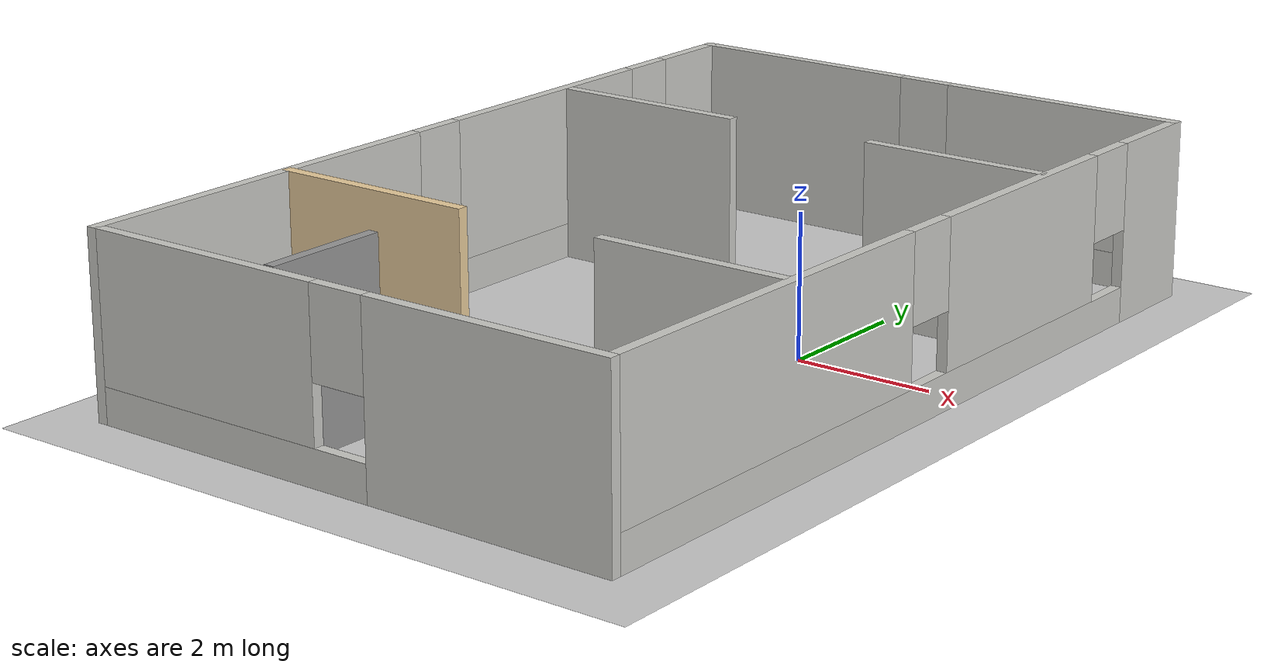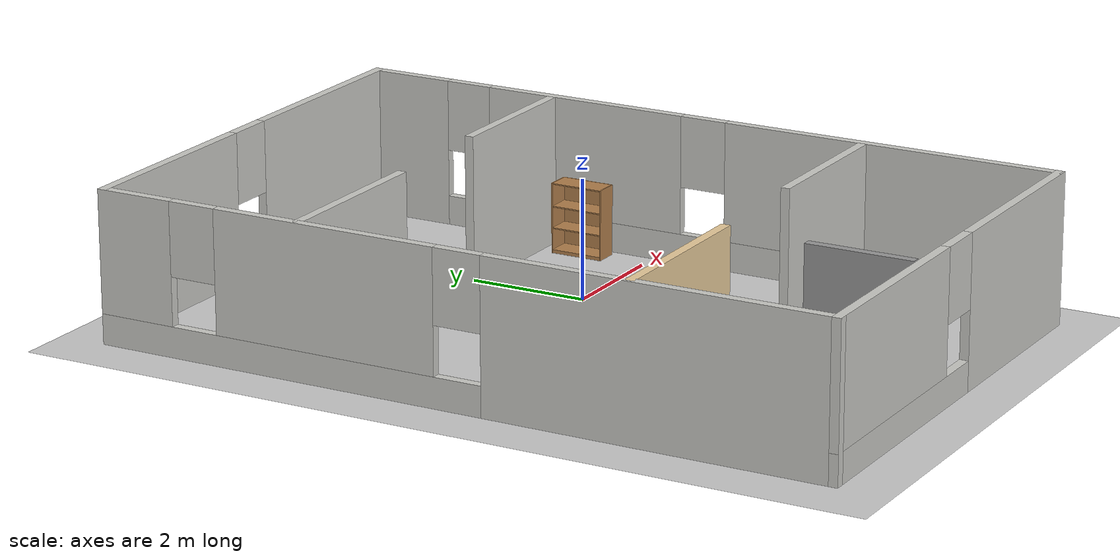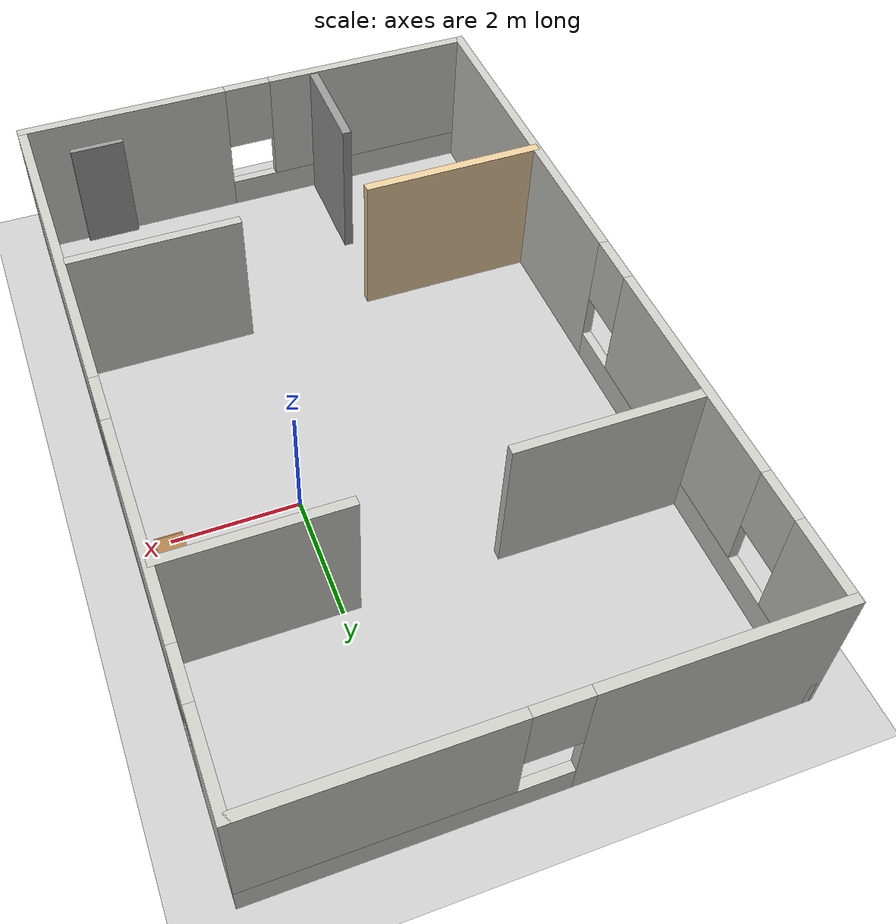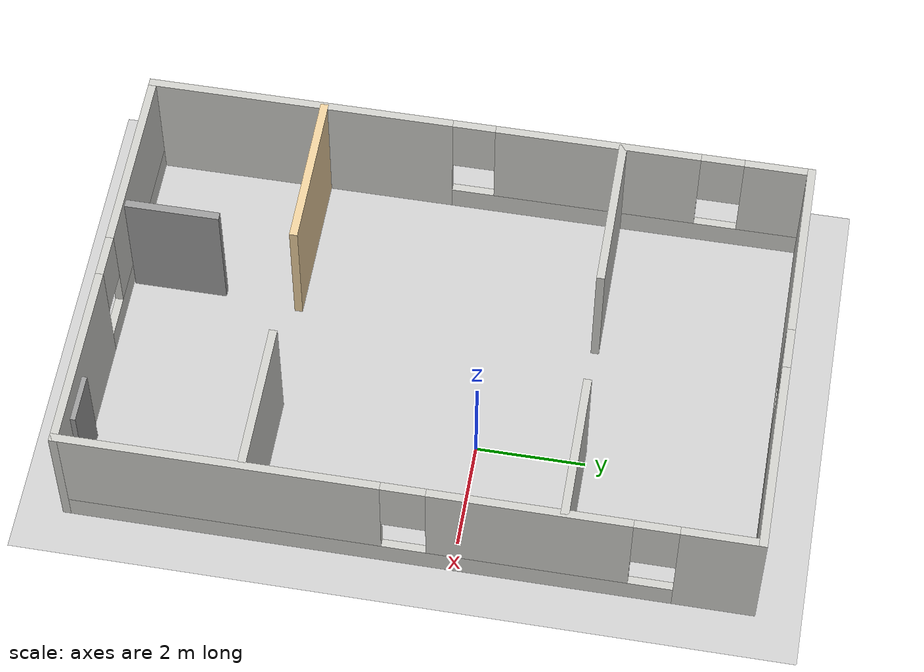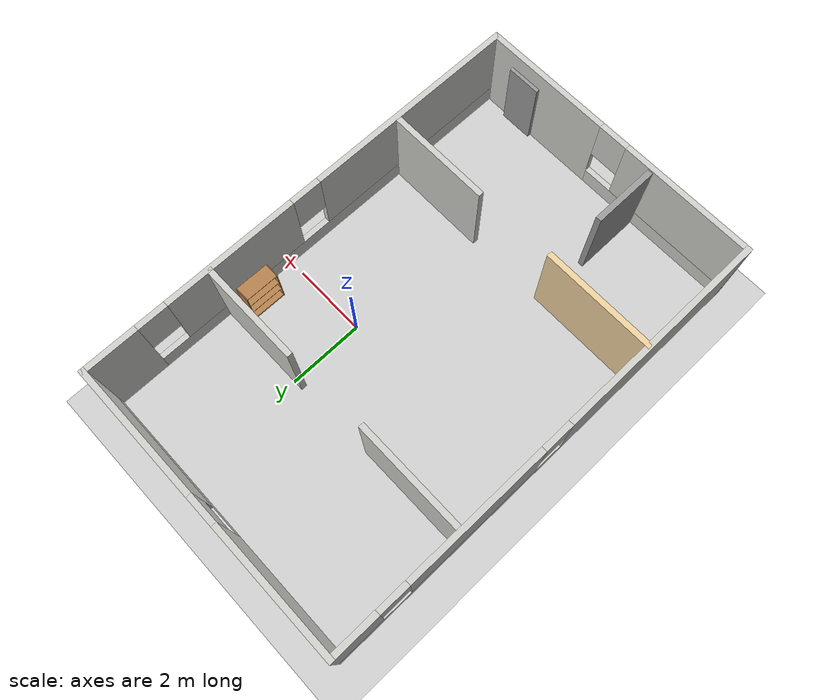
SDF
<sdf version="1.7">
 <world name="default">
  <light name="sun" type="directional">
   <pose>0 0 10 0 -0 0</pose>
   <diffuse>0.8 0.8 0.8 1</diffuse>
   <specular>0.2 0.2 0.2 1</specular>
   <attenuation>
    <range>1000</range>
    <constant>0.9</constant>
    <linear>0.01</linear>
    <quadratic>0.001</quadratic>
   </attenuation>
   <direction>-0.5 0.1 -0.9</direction>
   <spot><inner_angle>0</inner_angle><outer_angle>0</outer_angle><falloff>0</falloff></spot>
  </light>
  <model name="ground_plane">
   <static>1</static>
   <link name="link">
    <collision name="collision">
     <geometry><plane><normal>0 0 1</normal><size>100 100</size></plane></geometry>
     <surface><friction><ode><mu>100</mu><mu2>50</mu2></ode></friction></surface>
    </collision>
    <visual name="visual">
     <cast_shadows>0</cast_shadows>
     <geometry><plane><normal>0 0 1</normal><size>100 100</size></plane></geometry>
     <material>
      <script><uri>file://media/materials/scripts/gazebo.material</uri><name>Gazebo/Grey</name></script>
     </material>
    </visual>
   </link>
  </model>
  <gravity>0 0 -9.8</gravity>
  <magnetic_field>6e-06 2.3e-05 -4.2e-05</magnetic_field>
  <atmosphere type="adiabatic"/>
  <physics type="ode">
   <max_step_size>0.001</max_step_size>
   <real_time_factor>1</real_time_factor>
   <real_time_update_rate>1000</real_time_update_rate>
  </physics>
  <scene><ambient>0.4 0.4 0.4 1</ambient><background>0.7 0.7 0.7 1</background><shadows>1</shadows></scene>
  <audio><device>default</device></audio>
  <spherical_coordinates>
   <surface_model>EARTH_WGS84</surface_model>
   <latitude_deg>0</latitude_deg>
   <longitude_deg>0</longitude_deg>
   <elevation>0</elevation>
   <heading_deg>0</heading_deg>
  </spherical_coordinates>
  <model name="officelayout">
   <pose>-1.4535 -0.855734 0 0 -0 0</pose>
   <link name="Door_0">
    <collision name="Door_0_Collision">
     <geometry><box><size>0.9 0.17 2</size></box></geometry>
     <pose>0 0 1 0 -0 0</pose>
    </collision>
    <visual name="Door_0_Visual">
     <pose>0 0 1 0 -0 0</pose>
     <geometry><box><size>0.9 0.17 2</size></box></geometry>
     <material>
      <script><uri>file://media/materials/scripts/gazebo.material</uri><name>Gazebo/Grey</name></script>
     </material>
    </visual>
    <pose>2.78235 -6.08931 0 0 -0 0</pose>
   </link>
   <link name="Wall_0">
    <pose>-3.925 -0 0 0 -0 1.5708</pose>
    <visual name="Wall_0_Visual_0">
     <pose>-3.36758 0 1.25 0 -0 0</pose>
     <geometry><box><size>5.76484 0.15 2.5</size></box></geometry>
     <material>
      <script><uri>file://media/materials/scripts/gazebo.material</uri><name>Gazebo/CeilingTiled</name></script>
      <ambient>1 1 1 1</ambient>
     </material>
     <meta><layer>0</layer></meta>
    </visual>
    <collision name="Wall_0_Collision_0">
     <geometry><box><size>5.76484 0.15 2.5</size></box></geometry>
     <pose>-3.36758 0 1.25 0 -0 0</pose>
    </collision>
    <visual name="Wall_0_Visual_1">
     <pose>2.88242 0 0.25 0 -0 0</pose>
     <geometry><box><size>6.73516 0.15 0.5</size></box></geometry>
     <material>
      <script><uri>file://media/materials/scripts/gazebo.material</uri><name>Gazebo/CeilingTiled</name></script>
      <ambient>1 1 1 1</ambient>
     </material>
     <meta><layer>0</layer></meta>
    </visual>
    <collision name="Wall_0_Collision_1">
     <geometry><box><size>6.73516 0.15 0.5</size></box></geometry>
     <pose>2.88242 0 0.25 0 -0 0</pose>
    </collision>
    <visual name="Wall_0_Visual_2">
     <pose>2.22921 0 1.5 0 -0 0</pose>
     <geometry><box><size>3.82875 0.15 2</size></box></geometry>
     <material>
      <script><uri>file://media/materials/scripts/gazebo.material</uri><name>Gazebo/CeilingTiled</name></script>
      <ambient>1 1 1 1</ambient>
     </material>
     <meta><layer>0</layer></meta>
    </visual>
    <collision name="Wall_0_Collision_2">
     <geometry><box><size>3.82875 0.15 2</size></box></geometry>
     <pose>2.22921 0 1.5 0 -0 0</pose>
    </collision>
    <visual name="Wall_0_Visual_3">
     <pose>5.59679 0 1.5 0 -0 0</pose>
     <geometry><box><size>1.30641 0.15 2</size></box></geometry>
     <material>
      <script><uri>file://media/materials/scripts/gazebo.material</uri><name>Gazebo/CeilingTiled</name></script>
      <ambient>1 1 1 1</ambient>
     </material>
     <meta><layer>0</layer></meta>
    </visual>
    <collision name="Wall_0_Collision_3">
     <geometry><box><size>1.30641 0.15 2</size></box></geometry>
     <pose>5.59679 0 1.5 0 -0 0</pose>
    </collision>
    <visual name="Wall_0_Visual_4">
     <pose>-0.085164 0 1.9 0 -0 0</pose>
     <geometry><box><size>0.8 0.15 1.2</size></box></geometry>
     <material>
      <script><uri>file://media/materials/scripts/gazebo.material</uri><name>Gazebo/CeilingTiled</name></script>
      <ambient>1 1 1 1</ambient>
     </material>
     <meta><layer>0</layer></meta>
    </visual>
    <collision name="Wall_0_Collision_4">
     <geometry><box><size>0.8 0.15 1.2</size></box></geometry>
     <pose>-0.085164 0 1.9 0 -0 0</pose>
    </collision>
    <visual name="Wall_0_Visual_5">
     <pose>4.54359 0 1.9 0 -0 0</pose>
     <geometry><box><size>0.8 0.15 1.2</size></box></geometry>
     <material>
      <script><uri>file://media/materials/scripts/gazebo.material</uri><name>Gazebo/CeilingTiled</name></script>
      <ambient>1 1 1 1</ambient>
     </material>
     <meta><layer>0</layer></meta>
    </visual>
    <collision name="Wall_0_Collision_5">
     <geometry><box><size>0.8 0.15 1.2</size></box></geometry>
     <pose>4.54359 0 1.9 0 -0 0</pose>
    </collision>
   </link>
   <link name="Wall_1">
    <pose>0 6.175 0 0 -0 0</pose>
    <visual name="Wall_1_Visual_0">
     <pose>-2.2239 0 1.25 0 -0 0</pose>
     <geometry><box><size>3.5522 0.15 2.5</size></box></geometry>
     <material>
      <script><uri>file://media/materials/scripts/gazebo.material</uri><name>Gazebo/CeilingTiled</name></script>
      <ambient>1 1 1 1</ambient>
     </material>
     <meta><layer>0</layer></meta>
    </visual>
    <collision name="Wall_1_Collision_0">
     <geometry><box><size>3.5522 0.15 2.5</size></box></geometry>
     <pose>-2.2239 0 1.25 0 -0 0</pose>
    </collision>
    <visual name="Wall_1_Visual_1">
     <pose>1.7761 0 0.25 0 -0 0</pose>
     <geometry><box><size>4.4478 0.15 0.5</size></box></geometry>
     <material>
      <script><uri>file://media/materials/scripts/gazebo.material</uri><name>Gazebo/CeilingTiled</name></script>
      <ambient>1 1 1 1</ambient>
     </material>
     <meta><layer>0</layer></meta>
    </visual>
    <collision name="Wall_1_Collision_1">
     <geometry><box><size>4.4478 0.15 0.5</size></box></geometry>
     <pose>1.7761 0 0.25 0 -0 0</pose>
    </collision>
    <visual name="Wall_1_Visual_2">
     <pose>2.1761 0 1.5 0 -0 0</pose>
     <geometry><box><size>3.6478 0.15 2</size></box></geometry>
     <material>
      <script><uri>file://media/materials/scripts/gazebo.material</uri><name>Gazebo/CeilingTiled</name></script>
      <ambient>1 1 1 1</ambient>
     </material>
     <meta><layer>0</layer></meta>
    </visual>
    <collision name="Wall_1_Collision_2">
     <geometry><box><size>3.6478 0.15 2</size></box></geometry>
     <pose>2.1761 0 1.5 0 -0 0</pose>
    </collision>
    <visual name="Wall_1_Visual_3">
     <pose>-0.047799 0 1.9 0 -0 0</pose>
     <geometry><box><size>0.8 0.15 1.2</size></box></geometry>
     <material>
      <script><uri>file://media/materials/scripts/gazebo.material</uri><name>Gazebo/CeilingTiled</name></script>
      <ambient>1 1 1 1</ambient>
     </material>
     <meta><layer>0</layer></meta>
    </visual>
    <collision name="Wall_1_Collision_3">
     <geometry><box><size>0.8 0.15 1.2</size></box></geometry>
     <pose>-0.047799 0 1.9 0 -0 0</pose>
    </collision>
   </link>
   <link name="Wall_12">
    <collision name="Wall_12_Collision">
     <geometry><box><size>3 0.15 2.5</size></box></geometry>
     <pose>0 0 1.25 0 -0 0</pose>
    </collision>
    <visual name="Wall_12_Visual">
     <pose>0 0 1.25 0 -0 0</pose>
     <geometry><box><size>3 0.15 2.5</size></box></geometry>
     <material>
      <script><uri>file://media/materials/scripts/gazebo.material</uri><name>Gazebo/Grey</name></script>
      <ambient>0.921569 0.807843 0.615686 1</ambient>
     </material>
     <meta><layer>0</layer></meta>
    </visual>
    <pose>-2.45805 -2.91531 0 0 -0 0</pose>
   </link>
   <link name="Wall_2">
    <pose>3.925 -0 0 0 -0 -1.5708</pose>
    <visual name="Wall_2_Visual_0">
     <pose>-5.50422 0 1.25 0 -0 0</pose>
     <geometry><box><size>1.49156 0.15 2.5</size></box></geometry>
     <material>
      <script><uri>file://media/materials/scripts/gazebo.material</uri><name>Gazebo/CeilingTiled</name></script>
      <ambient>1 1 1 1</ambient>
     </material>
     <meta><layer>0</layer></meta>
    </visual>
    <collision name="Wall_2_Collision_0">
     <geometry><box><size>1.49156 0.15 2.5</size></box></geometry>
     <pose>-5.50422 0 1.25 0 -0 0</pose>
    </collision>
    <visual name="Wall_2_Visual_1">
     <pose>0.745782 0 0.25 0 -0 0</pose>
     <geometry><box><size>11.0084 0.15 0.5</size></box></geometry>
     <material>
      <script><uri>file://media/materials/scripts/gazebo.material</uri><name>Gazebo/CeilingTiled</name></script>
      <ambient>1 1 1 1</ambient>
     </material>
     <meta><layer>0</layer></meta>
    </visual>
    <collision name="Wall_2_Collision_1">
     <geometry><box><size>11.0084 0.15 0.5</size></box></geometry>
     <pose>0.745782 0 0.25 0 -0 0</pose>
    </collision>
    <visual name="Wall_2_Visual_2">
     <pose>-2.16309 0 1.5 0 -0 0</pose>
     <geometry><box><size>3.5907 0.15 2</size></box></geometry>
     <material>
      <script><uri>file://media/materials/scripts/gazebo.material</uri><name>Gazebo/CeilingTiled</name></script>
      <ambient>1 1 1 1</ambient>
     </material>
     <meta><layer>0</layer></meta>
    </visual>
    <collision name="Wall_2_Collision_2">
     <geometry><box><size>3.5907 0.15 2</size></box></geometry>
     <pose>-2.16309 0 1.5 0 -0 0</pose>
    </collision>
    <visual name="Wall_2_Visual_3">
     <pose>3.34113 0 1.5 0 -0 0</pose>
     <geometry><box><size>5.81774 0.15 2</size></box></geometry>
     <material>
      <script><uri>file://media/materials/scripts/gazebo.material</uri><name>Gazebo/CeilingTiled</name></script>
      <ambient>1 1 1 1</ambient>
     </material>
     <meta><layer>0</layer></meta>
    </visual>
    <collision name="Wall_2_Collision_3">
     <geometry><box><size>5.81774 0.15 2</size></box></geometry>
     <pose>3.34113 0 1.5 0 -0 0</pose>
    </collision>
    <visual name="Wall_2_Visual_4">
     <pose>-4.35844 0 1.9 0 -0 0</pose>
     <geometry><box><size>0.8 0.15 1.2</size></box></geometry>
     <material>
      <script><uri>file://media/materials/scripts/gazebo.material</uri><name>Gazebo/CeilingTiled</name></script>
      <ambient>1 1 1 1</ambient>
     </material>
     <meta><layer>0</layer></meta>
    </visual>
    <collision name="Wall_2_Collision_4">
     <geometry><box><size>0.8 0.15 1.2</size></box></geometry>
     <pose>-4.35844 0 1.9 0 -0 0</pose>
    </collision>
    <visual name="Wall_2_Visual_5">
     <pose>0.032264 0 1.9 0 -0 0</pose>
     <geometry><box><size>0.8 0.15 1.2</size></box></geometry>
     <material>
      <script><uri>file://media/materials/scripts/gazebo.material</uri><name>Gazebo/CeilingTiled</name></script>
      <ambient>1 1 1 1</ambient>
     </material>
     <meta><layer>0</layer></meta>
    </visual>
    <collision name="Wall_2_Collision_5">
     <geometry><box><size>0.8 0.15 1.2</size></box></geometry>
     <pose>0.032264 0 1.9 0 -0 0</pose>
    </collision>
   </link>
   <link name="Wall_3">
    <pose>0 -6.175 0 0 -0 3.14159</pose>
    <visual name="Wall_3_Visual_0">
     <pose>-2.229 0 1.25 0 -0 0</pose>
     <geometry><box><size>3.542 0.15 2.5</size></box></geometry>
     <material>
      <script><uri>file://media/materials/scripts/gazebo.material</uri><name>Gazebo/CeilingTiled</name></script>
      <ambient>1 1 1 1</ambient>
     </material>
     <meta><layer>0</layer></meta>
    </visual>
    <collision name="Wall_3_Collision_0">
     <geometry><box><size>3.542 0.15 2.5</size></box></geometry>
     <pose>-2.229 0 1.25 0 -0 0</pose>
    </collision>
    <visual name="Wall_3_Visual_1">
     <pose>1.771 0 0.25 0 -0 0</pose>
     <geometry><box><size>4.458 0.15 0.5</size></box></geometry>
     <material>
      <script><uri>file://media/materials/scripts/gazebo.material</uri><name>Gazebo/CeilingTiled</name></script>
      <ambient>1 1 1 1</ambient>
     </material>
     <meta><layer>0</layer></meta>
    </visual>
    <collision name="Wall_3_Collision_1">
     <geometry><box><size>4.458 0.15 0.5</size></box></geometry>
     <pose>1.771 0 0.25 0 -0 0</pose>
    </collision>
    <visual name="Wall_3_Visual_2">
     <pose>2.171 0 1.5 0 -0 0</pose>
     <geometry><box><size>3.658 0.15 2</size></box></geometry>
     <material>
      <script><uri>file://media/materials/scripts/gazebo.material</uri><name>Gazebo/CeilingTiled</name></script>
      <ambient>1 1 1 1</ambient>
     </material>
     <meta><layer>0</layer></meta>
    </visual>
    <collision name="Wall_3_Collision_2">
     <geometry><box><size>3.658 0.15 2</size></box></geometry>
     <pose>2.171 0 1.5 0 -0 0</pose>
    </collision>
    <visual name="Wall_3_Visual_3">
     <pose>-0.058001 0 1.9 0 -0 0</pose>
     <geometry><box><size>0.8 0.15 1.2</size></box></geometry>
     <material>
      <script><uri>file://media/materials/scripts/gazebo.material</uri><name>Gazebo/CeilingTiled</name></script>
      <ambient>1 1 1 1</ambient>
     </material>
     <meta><layer>0</layer></meta>
    </visual>
    <collision name="Wall_3_Collision_3">
     <geometry><box><size>0.8 0.15 1.2</size></box></geometry>
     <pose>-0.058001 0 1.9 0 -0 0</pose>
    </collision>
   </link>
   <link name="Wall_5">
    <collision name="Wall_5_Collision">
     <geometry><box><size>3 0.15 2.5</size></box></geometry>
     <pose>0 0 1.25 0 -0 0</pose>
    </collision>
    <visual name="Wall_5_Visual">
     <pose>0 0 1.25 0 -0 0</pose>
     <geometry><box><size>3 0.15 2.5</size></box></geometry>
     <material>
      <script><uri>file://media/materials/scripts/gazebo.material</uri><name>Gazebo/CeilingTiled</name></script>
      <ambient>0.921569 0.807843 0.615686 1</ambient>
     </material>
     <meta><layer>0</layer></meta>
    </visual>
    <pose>-2.45805 2.69209 0 0 -0 0</pose>
   </link>
   <link name="Wall_7">
    <collision name="Wall_7_Collision">
     <geometry><box><size>2.75 0.15 2.5</size></box></geometry>
     <pose>0 0 1.25 0 -0 0</pose>
    </collision>
    <visual name="Wall_7_Visual">
     <pose>0 0 1.25 0 -0 0</pose>
     <geometry><box><size>2.75 0.15 2.5</size></box></geometry>
     <material>
      <script><uri>file://media/materials/scripts/gazebo.material</uri><name>Gazebo/CeilingTiled</name></script>
      <ambient>0.921569 0.807843 0.615686 1</ambient>
     </material>
     <meta><layer>0</layer></meta>
    </visual>
    <pose>2.5668 2.77144 0 0 -0 3.14159</pose>
   </link>
   <link name="Wall_9">
    <collision name="Wall_9_Collision">
     <geometry><box><size>2.75 0.15 2.5</size></box></geometry>
     <pose>0 0 1.25 0 -0 0</pose>
    </collision>
    <visual name="Wall_9_Visual">
     <pose>0 0 1.25 0 -0 0</pose>
     <geometry><box><size>2.75 0.15 2.5</size></box></geometry>
     <material>
      <script><uri>file://media/materials/scripts/gazebo.material</uri><name>Gazebo/CeilingTiled</name></script>
      <ambient>0.921569 0.807843 0.615686 1</ambient>
     </material>
     <meta><layer>0</layer></meta>
    </visual>
    <pose>2.48745 -2.86241 0 0 -0 3.14159</pose>
   </link>
   <static>1</static>
  </model>
  <model name="bookshelf">
   <static>1</static>
   <link name="link">
    <inertial><mass>1</mass></inertial>
    <collision name="back">
     <pose>0 0.005 0.6 0 -0 0</pose>
     <geometry><box><size>0.9 0.01 1.2</size></box></geometry>
    </collision>
    <visual name="visual1">
     <pose>0 0.005 0.6 0 -0 0</pose>
     <geometry><box><size>0.9 0.01 1.2</size></box></geometry>
     <material>
      <script><uri>file://media/materials/scripts/gazebo.material</uri><name>Gazebo/Wood</name></script>
     </material>
    </visual>
    <collision name="left_side">
     <pose>0.45 -0.195 0.6 0 -0 0</pose>
     <geometry><box><size>0.02 0.4 1.2</size></box></geometry>
    </collision>
    <visual name="visual2">
     <pose>0.45 -0.195 0.6 0 -0 0</pose>
     <geometry><box><size>0.02 0.4 1.2</size></box></geometry>
     <material>
      <script><uri>file://media/materials/scripts/gazebo.material</uri><name>Gazebo/Wood</name></script>
     </material>
    </visual>
    <collision name="right_side">
     <pose>-0.45 -0.195 0.6 0 -0 0</pose>
     <geometry><box><size>0.02 0.4 1.2</size></box></geometry>
    </collision>
    <visual name="visual3">
     <pose>-0.45 -0.195 0.6 0 -0 0</pose>
     <geometry><box><size>0.02 0.4 1.2</size></box></geometry>
     <material>
      <script><uri>file://media/materials/scripts/gazebo.material</uri><name>Gazebo/Wood</name></script>
     </material>
    </visual>
    <collision name="bottom">
     <pose>0 -0.195 0.03 0 -0 0</pose>
     <geometry><box><size>0.88 0.4 0.06</size></box></geometry>
    </collision>
    <visual name="visual4">
     <pose>0 -0.195 0.03 0 -0 0</pose>
     <geometry><box><size>0.88 0.4 0.06</size></box></geometry>
     <material>
      <script><uri>file://media/materials/scripts/gazebo.material</uri><name>Gazebo/Wood</name></script>
     </material>
    </visual>
    <collision name="top">
     <pose>0 -0.195 1.19 0 -0 0</pose>
     <geometry><box><size>0.88 0.4 0.02</size></box></geometry>
    </collision>
    <visual name="visual5">
     <pose>0 -0.195 1.19 0 -0 0</pose>
     <geometry><box><size>0.88 0.4 0.02</size></box></geometry>
     <material>
      <script><uri>file://media/materials/scripts/gazebo.material</uri><name>Gazebo/Wood</name></script>
     </material>
    </visual>
    <collision name="low_shelf">
     <pose>0 -0.195 0.43 0 -0 0</pose>
     <geometry><box><size>0.88 0.4 0.02</size></box></geometry>
    </collision>
    <visual name="visual6">
     <pose>0 -0.195 0.43 0 -0 0</pose>
     <geometry><box><size>0.88 0.4 0.02</size></box></geometry>
     <material>
      <script><uri>file://media/materials/scripts/gazebo.material</uri><name>Gazebo/Wood</name></script>
     </material>
    </visual>
    <collision name="high_shelf">
     <pose>0 -0.195 0.8 0 -0 0</pose>
     <geometry><box><size>0.88 0.4 0.02</size></box></geometry>
    </collision>
    <visual name="visual7">
     <pose>0 -0.195 0.8 0 -0 0</pose>
     <geometry><box><size>0.88 0.4 0.02</size></box></geometry>
     <material>
      <script><uri>file://media/materials/scripts/gazebo.material</uri><name>Gazebo/Wood</name></script>
     </material>
    </visual>
   </link>
   <pose>2.26816 1.16199 0 0 0 -1.57512</pose>
  </model>
  <model name="office2">
   <pose>-1.3325 -3.4625 0 0 -0 0</pose>
   <link name="Wall_2">
    <collision name="Wall_2_Collision">
     <geometry><box><size>1.75 0.15 2.5</size></box></geometry>
     <pose>0 0 1.25 0 -0 0</pose>
    </collision>
    <visual name="Wall_2_Visual">
     <pose>0 0 1.25 0 -0 0</pose>
     <geometry><box><size>1.75 0.15 2.5</size></box></geometry>
     <material>
      <script><uri>file://media/materials/scripts/gazebo.material</uri><name>Gazebo/Grey</name></script>
      <ambient>1 1 1 1</ambient>
     </material>
     <meta><layer>0</layer></meta>
    </visual>
    <pose>-1.2575 -2.5875 0 0 -0 1.5708</pose>
   </link>
   <static>1</static>
  </model>
 </world>
</sdf>
